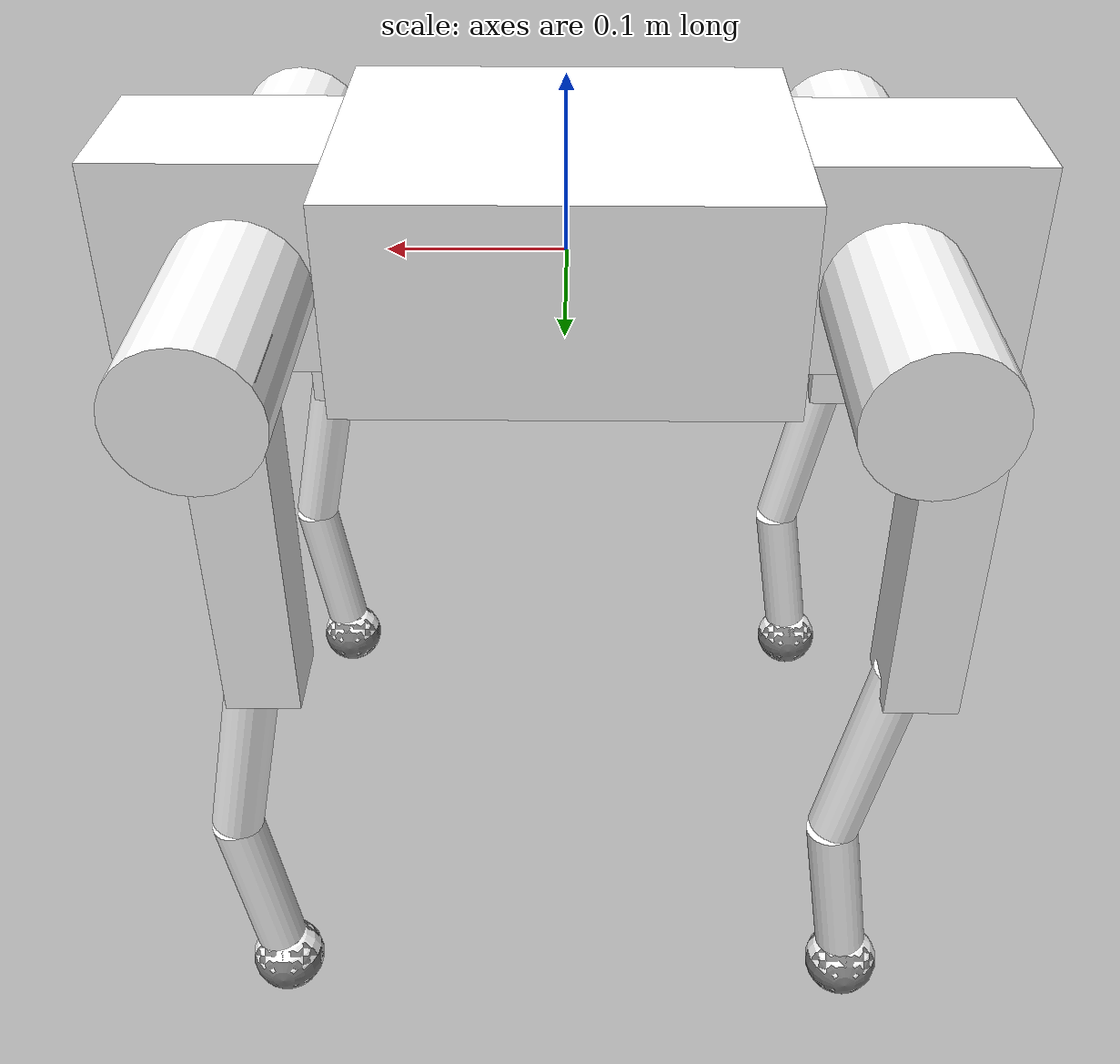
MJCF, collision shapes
<mujoco model="Lite3">
  <compiler angle="radian" meshdir="../assets/"/>

  <asset>
    <mesh name="torso" content_type="model/stl" file="../assets/torso.STL"/>
    <mesh name="fl_hip" content_type="model/stl" file="../assets/fl_hip.STL"/>
    <mesh name="fl_thigh" content_type="model/stl" file="../assets/fl_thigh.STL"/>
    <mesh name="fl_shank_collision" content_type="model/stl" file="../assets/fl_shank_collision.STL"/>
    <mesh name="fr_hip" content_type="model/stl" file="../assets/fr_hip.STL"/>
    <mesh name="fr_thigh" content_type="model/stl" file="../assets/fr_thigh.STL"/>
    <mesh name="fr_shank_collision" content_type="model/stl" file="../assets/fr_shank_collision.STL"/>
    <mesh name="hl_hip" content_type="model/stl" file="../assets/hl_hip.STL"/>
    <mesh name="hl_thigh" content_type="model/stl" file="../assets/hl_thigh.STL"/>
    <mesh name="hl_shank_collision" content_type="model/stl" file="../assets/hl_shank_collision.STL"/>
    <mesh name="hr_hip" content_type="model/stl" file="../assets/hr_hip.STL"/>
    <mesh name="hr_thigh" content_type="model/stl" file="../assets/hr_thigh.STL"/>
    <mesh name="hr_shank_collision" content_type="model/stl" file="../assets/hr_shank_collision.STL"/>
  </asset>

  <worldbody>
    <body name="TORSO">
      <inertial pos="0 0 0" quat="0 0.707107 0 0.707107" mass="5.6056" diaginertia="0.07016 0.05518 0.02456"/>
      <joint name="floating_base_joint" type="free"/>
      <geom type="mesh" contype="0" conaffinity="0" group="1" density="0" rgba="1 1 1 1" mesh="torso"/>
      <geom size="0.25 0.05 0.06" pos="0 0 0.01" type="box" rgba="1 1 1 1"/>
      <geom size="0.125 0.1 0.06" pos="0 0 0.01" type="box" rgba="1 1 1 1"/>
      <body name="FL_HIP" pos="0.1745 0.062 0">
        <inertial pos="-0.00601 -0.0066532 0.00034295" quat="0 0.707107 0 0.707107" mass="0.55" diaginertia="0.0004472 0.0004028 0.0003949"/>
        <joint name="FL_HipX_joint" pos="0 0 0" axis="-1 0 0" range="-0.523 0.523" actuatorfrcrange="-24 24"/>
        <geom type="mesh" contype="0" conaffinity="0" group="1" density="0" rgba="1 1 1 1" mesh="fl_hip"/>
        <geom size="0.04 0.075" pos="0 0.05 0" quat="0.707107 0.707107 0 0" type="cylinder" rgba="1 1 1 1"/>
        <body name="FL_THIGH" pos="0 0.09735 0">
          <inertial pos="-0.0052817 -0.014632 -0.042672" mass="0.86" diaginertia="0.005736 0.00496 0.001436"/>
          <joint name="FL_HipY_joint" pos="0 0 0" axis="0 -1 0" range="-2.67 0.314" actuatorfrcrange="-24 24"/>
          <geom type="mesh" contype="0" conaffinity="0" group="1" density="0" rgba="1 1 1 1" mesh="fl_thigh"/>
          <geom size="0.02 0.0225 0.1" pos="-0.015 0 -0.08" type="box" rgba="1 1 1 1"/>
          <body name="FL_SHANK" pos="0 0 -0.2">
            <inertial pos="0.00573034 -1.28547e-06 -0.131807" quat="0.707101 0.00359881 0.00359725 0.707095" mass="0.173" diaginertia="0.00104615 0.00102919 3.19053e-05"/>
            <joint name="FL_Knee_joint" pos="0 0 0" axis="0 -1 0" range="0.524 2.792" actuatorfrcrange="-36 36"/>
            <geom type="mesh" contype="0" conaffinity="0" group="1" density="0" rgba="1 1 1 1" mesh="fl_shank_collision"/>
            <geom size="0.015 0.06" pos="0.005 0 -0.03" quat="0.995004 0 -0.0998334 0" type="cylinder" rgba="1 1 1 1"/>
            <geom size="0.015 0.05" pos="0.01 0 -0.14" quat="0.997189 0 0.0749297 0" type="cylinder" rgba="1 1 1 1"/>
            <geom size="0.022" pos="0 0 -0.21012" quat="0.707107 0.707107 0 0"/>
            <geom size="0.022" pos="0 0 -0.21012" contype="0" conaffinity="0" group="1" density="0" rgba="1 1 1 1"/>
          </body>
        </body>
      </body>
      <body name="FR_HIP" pos="0.1745 -0.062 0">
        <inertial pos="-0.010579 0.011358 0.00048546" mass="0.55" diaginertia="0.0004472 0.0004028 0.0003949"/>
        <joint name="FR_HipX_joint" pos="0 0 0" axis="-1 0 0" range="-0.523 0.523" actuatorfrcrange="-24 24"/>
        <geom type="mesh" contype="0" conaffinity="0" group="1" density="0" rgba="1 1 1 1" mesh="fr_hip"/>
        <geom size="0.04 0.075" pos="0 -0.05 0" quat="0.707107 0.707107 0 0" type="cylinder" rgba="1 1 1 1"/>
        <body name="FR_THIGH" pos="0 -0.09735 0">
          <inertial pos="-0.0039245 0.025256 -0.025146" mass="0.86" diaginertia="0.005736 0.00496 0.001436"/>
          <joint name="FR_HipY_joint" pos="0 0 0" axis="0 -1 0" range="-2.67 0.314" actuatorfrcrange="-24 24"/>
          <geom type="mesh" contype="0" conaffinity="0" group="1" density="0" rgba="1 1 1 1" mesh="fr_thigh"/>
          <geom size="0.02 0.0225 0.1" pos="-0.015 0 -0.08" type="box" rgba="1 1 1 1"/>
          <body name="FR_SHANK" pos="0 0 -0.2">
            <inertial pos="0.00573034 -1.28697e-06 -0.131807" quat="0.707101 0.00359881 0.00359725 0.707095" mass="0.173" diaginertia="0.00104615 0.00102919 3.19053e-05"/>
            <joint name="FR_Knee_joint" pos="0 0 0" axis="0 -1 0" range="0.524 2.792" actuatorfrcrange="-36 36"/>
            <geom type="mesh" contype="0" conaffinity="0" group="1" density="0" rgba="1 1 1 1" mesh="fr_shank_collision"/>
            <geom size="0.015 0.06" pos="0.005 0 -0.03" quat="0.995004 0 -0.0998334 0" type="cylinder" rgba="1 1 1 1"/>
            <geom size="0.015 0.05" pos="0.01 0 -0.14" quat="0.997189 0 0.0749297 0" type="cylinder" rgba="1 1 1 1"/>
            <geom size="0.022" pos="0 0 -0.21012" quat="0.707107 0.707107 0 0"/>
            <geom size="0.022" pos="0 0 -0.21012" contype="0" conaffinity="0" group="1" density="0" rgba="1 1 1 1"/>
          </body>
        </body>
      </body>
      <body name="HL_HIP" pos="-0.1745 0.062 0">
        <inertial pos="0.010905 -0.012636 0.001051" quat="0 0.707107 0 0.707107" mass="0.55" diaginertia="0.0004472 0.0004028 0.0003949"/>
        <joint name="HL_HipX_joint" pos="0 0 0" axis="-1 0 0" range="-0.523 0.523" actuatorfrcrange="-24 24"/>
        <geom type="mesh" contype="0" conaffinity="0" group="1" density="0" rgba="1 1 1 1" mesh="hl_hip"/>
        <geom size="0.04 0.075" pos="0 0.05 0" quat="0.707107 0.707107 0 0" type="cylinder" rgba="1 1 1 1"/>
        <body name="HL_THIGH" pos="0 0.09735 0">
          <inertial pos="-0.0057137 -0.014631 -0.042453" mass="0.86" diaginertia="0.005736 0.00496 0.001436"/>
          <joint name="HL_HipY_joint" pos="0 0 0" axis="0 -1 0" range="-2.67 0.314" actuatorfrcrange="-24 24"/>
          <geom type="mesh" contype="0" conaffinity="0" group="1" density="0" rgba="1 1 1 1" mesh="hl_thigh"/>
          <geom size="0.02 0.0225 0.1" pos="-0.015 0 -0.08" type="box" rgba="1 1 1 1"/>
          <body name="HL_SHANK" pos="0 0 -0.2">
            <inertial pos="0.00573034 -1.2875e-06 -0.131807" quat="0.707101 0.00359881 0.00359725 0.707095" mass="0.173" diaginertia="0.00104615 0.00102919 3.19053e-05"/>
            <joint name="HL_Knee_joint" pos="0 0 0" axis="0 -1 0" range="0.524 2.792" actuatorfrcrange="-36 36"/>
            <geom type="mesh" contype="0" conaffinity="0" group="1" density="0" rgba="1 1 1 1" mesh="hl_shank_collision"/>
            <geom size="0.015 0.06" pos="0.005 0 -0.03" quat="0.995004 0 -0.0998334 0" type="cylinder" rgba="1 1 1 1"/>
            <geom size="0.015 0.05" pos="0.01 0 -0.14" quat="0.997189 0 0.0749297 0" type="cylinder" rgba="1 1 1 1"/>
            <geom size="0.022" pos="0 0 -0.21012" quat="0.707107 0.707107 0 0"/>
            <geom size="0.022" pos="0 0 -0.21012" contype="0" conaffinity="0" group="1" density="0" rgba="1 1 1 1"/>
          </body>
        </body>
      </body>
      <body name="HR_HIP" pos="-0.1745 -0.062 0">
        <inertial pos="0.010354 0.011423 0.00049498" mass="0.55" diaginertia="0.0004472 0.0004028 0.0003949"/>
        <joint name="HR_HipX_joint" pos="0 0 0" axis="-1 0 0" range="-0.523 0.523" actuatorfrcrange="-24 24"/>
        <geom type="mesh" contype="0" conaffinity="0" group="1" density="0" rgba="1 1 1 1" mesh="hr_hip"/>
        <geom size="0.04 0.075" pos="0 -0.05 0" quat="0.707107 0.707107 0 0" type="cylinder" rgba="1 1 1 1"/>
        <body name="HR_THIGH" pos="0 -0.09735 0">
          <inertial pos="-0.0031903 0.02526 -0.025617" mass="0.86" diaginertia="0.005736 0.00496 0.001436"/>
          <joint name="HR_HipY_joint" pos="0 0 0" axis="0 -1 0" range="-2.67 0.314" actuatorfrcrange="-24 24"/>
          <geom type="mesh" contype="0" conaffinity="0" group="1" density="0" rgba="1 1 1 1" mesh="hr_thigh"/>
          <geom size="0.02 0.0225 0.1" pos="-0.015 0 -0.08" type="box" rgba="1 1 1 1"/>
          <body name="HR_SHANK" pos="0 0 -0.2">
            <inertial pos="0.00573034 -1.28493e-06 -0.131807" quat="0.707101 0.00359881 0.00359725 0.707095" mass="0.173" diaginertia="0.00104615 0.00102919 3.19053e-05"/>
            <joint name="HR_Knee_joint" pos="0 0 0" axis="0 -1 0" range="0.524 2.792" actuatorfrcrange="-36 36"/>
            <geom type="mesh" contype="0" conaffinity="0" group="1" density="0" rgba="1 1 1 1" mesh="hr_shank_collision"/>
            <geom size="0.015 0.06" pos="0.005 0 -0.03" quat="0.995004 0 -0.0998334 0" type="cylinder" rgba="1 1 1 1"/>
            <geom size="0.015 0.05" pos="0.01 0 -0.14" quat="0.997189 0 0.0749297 0" type="cylinder" rgba="1 1 1 1"/>
            <geom size="0.022" pos="0 0 -0.21012" quat="0.707107 0.707107 0 0"/>
            <geom size="0.022" pos="0 0 -0.21012" contype="0" conaffinity="0" group="1" density="0" rgba="1 1 1 1"/>
          </body>
        </body>
      </body>
    </body>
  </worldbody>
</mujoco>
